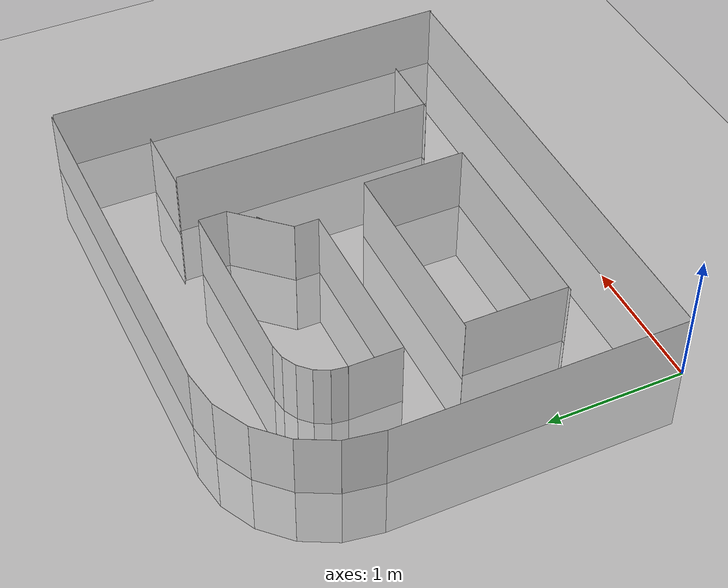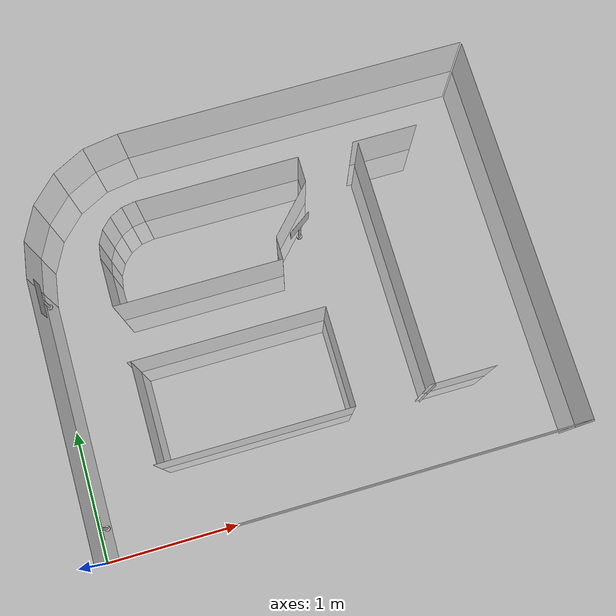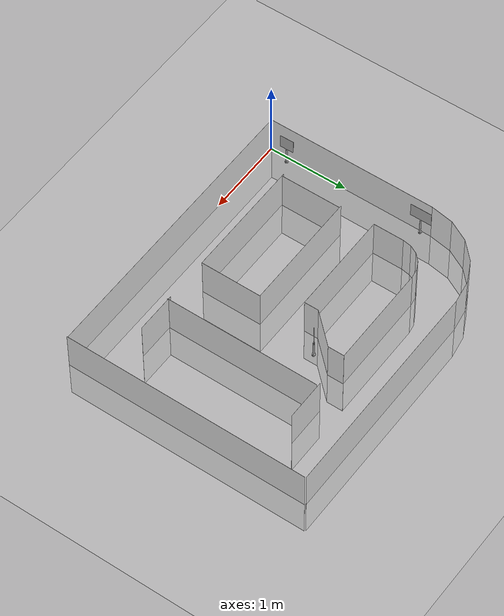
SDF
<sdf version="1.7">
 <world name="default">
  <light name="sun" type="directional">
   <pose>0 0 10 0 -0 0</pose>
   <diffuse>0.8 0.8 0.8 1</diffuse>
   <specular>0.1 0.1 0.1 1</specular>
   <attenuation>
    <range>1000</range>
    <constant>0.9</constant>
    <linear>0.01</linear>
    <quadratic>0.001</quadratic>
   </attenuation>
   <direction>-0.5 0.5 -1</direction>
   <spot><inner_angle>0</inner_angle><outer_angle>0</outer_angle><falloff>0</falloff></spot>
  </light>
  <model name="ground_plane">
   <static>1</static>
   <link name="link">
    <collision name="collision">
     <geometry><plane><normal>0 0 1</normal><size>100 100</size></plane></geometry>
     <surface><friction><ode><mu>100</mu><mu2>50</mu2></ode></friction></surface>
    </collision>
    <visual name="visual">
     <cast_shadows>0</cast_shadows>
     <geometry><plane><normal>0 0 1</normal><size>100 100</size></plane></geometry>
     <material>
      <script><uri>file://media/materials/scripts/gazebo.material</uri><name>Gazebo/Grey</name></script>
     </material>
    </visual>
   </link>
  </model>
  <model name="wall_0">
   <static>1</static>
   <link name="link">
    <collision name="collision"><geometry><box><size>2.1336 0.001 1</size></box></geometry></collision>
    <visual name="visual">
     <geometry><box><size>2.1336 0.001 1</size></box></geometry>
     <material>
      <script><name>Gazebo/White</name><uri>file://media/materials/scripts/gazebo.material</uri></script>
     </material>
    </visual>
   </link>
   <pose>0 1.0668 0 0 -0 1.5708</pose>
  </model>
  <model name="wall_1">
   <static>1</static>
   <link name="link">
    <collision name="collision"><geometry><box><size>0.286088 0.001 1</size></box></geometry></collision>
    <visual name="visual">
     <geometry><box><size>0.286088 0.001 1</size></box></geometry>
     <material>
      <script><name>Gazebo/White</name><uri>file://media/materials/scripts/gazebo.material</uri></script>
     </material>
    </visual>
   </link>
   <pose>0.022377 2.27489 0 0 -0 1.41372</pose>
  </model>
  <model name="wall_2">
   <static>1</static>
   <link name="link">
    <collision name="collision"><geometry><box><size>0.286088 0.001 1</size></box></geometry></collision>
    <visual name="visual">
     <geometry><box><size>0.286088 0.001 1</size></box></geometry>
     <material>
      <script><name>Gazebo/White</name><uri>file://media/materials/scripts/gazebo.material</uri></script>
     </material>
    </visual>
   </link>
   <pose>0.109695 2.54362 0 0 -0 1.09956</pose>
  </model>
  <model name="wall_3">
   <static>1</static>
   <link name="link">
    <collision name="collision"><geometry><box><size>0.286088 0.001 1</size></box></geometry></collision>
    <visual name="visual">
     <geometry><box><size>0.286088 0.001 1</size></box></geometry>
     <material>
      <script><name>Gazebo/White</name><uri>file://media/materials/scripts/gazebo.material</uri></script>
     </material>
    </visual>
   </link>
   <pose>0.275783 2.77222 0 0 -0 0.785398</pose>
  </model>
  <model name="wall_4">
   <static>1</static>
   <link name="link">
    <collision name="collision"><geometry><box><size>0.286088 0.001 1</size></box></geometry></collision>
    <visual name="visual">
     <geometry><box><size>0.286088 0.001 1</size></box></geometry>
     <material>
      <script><name>Gazebo/White</name><uri>file://media/materials/scripts/gazebo.material</uri></script>
     </material>
    </visual>
   </link>
   <pose>0.504383 2.93831 0 0 -0 0.471239</pose>
  </model>
  <model name="wall_5">
   <static>1</static>
   <link name="link">
    <collision name="collision"><geometry><box><size>0.286088 0.001 1</size></box></geometry></collision>
    <visual name="visual">
     <geometry><box><size>0.286088 0.001 1</size></box></geometry>
     <material>
      <script><name>Gazebo/White</name><uri>file://media/materials/scripts/gazebo.material</uri></script>
     </material>
    </visual>
   </link>
   <pose>0.773119 3.02563 0 0 -0 0.15708</pose>
  </model>
  <model name="wall_6">
   <static>1</static>
   <link name="link">
    <collision name="collision"><geometry><box><size>2.74321 0.001 1</size></box></geometry></collision>
    <visual name="visual">
     <geometry><box><size>2.74321 0.001 1</size></box></geometry>
     <material>
      <script><name>Gazebo/White</name><uri>file://media/materials/scripts/gazebo.material</uri></script>
     </material>
    </visual>
   </link>
   <pose>2.286 3.04801 0 0 -0 0</pose>
  </model>
  <model name="wall_7">
   <static>1</static>
   <link name="link">
    <collision name="collision"><geometry><box><size>3.04801 0.001 1</size></box></geometry></collision>
    <visual name="visual">
     <geometry><box><size>3.04801 0.001 1</size></box></geometry>
     <material>
      <script><name>Gazebo/White</name><uri>file://media/materials/scripts/gazebo.material</uri></script>
     </material>
    </visual>
   </link>
   <pose>3.66449 1.51101 0 0 0 -1.5708</pose>
  </model>
  <model name="wall_8">
   <static>1</static>
   <link name="link">
    <collision name="collision"><geometry><box><size>3.65761 0.001 1</size></box></geometry></collision>
    <visual name="visual">
     <geometry><box><size>3.65761 0.001 1</size></box></geometry>
     <material>
      <script><name>Gazebo/White</name><uri>file://media/materials/scripts/gazebo.material</uri></script>
     </material>
    </visual>
   </link>
   <pose>1.8288 0 0 0 0 -3.14159</pose>
  </model>
  <model name="wall_9">
   <static>1</static>
   <link name="link">
    <collision name="collision"><geometry><box><size>0.762002 0.001 1</size></box></geometry></collision>
    <visual name="visual">
     <geometry><box><size>0.762002 0.001 1</size></box></geometry>
     <material>
      <script><name>Gazebo/White</name><uri>file://media/materials/scripts/gazebo.material</uri></script>
     </material>
    </visual>
   </link>
   <pose>0.58664 0.939474 0 0 -0 1.5708</pose>
  </model>
  <model name="wall_10">
   <static>1</static>
   <link name="link">
    <collision name="collision"><geometry><box><size>1.4986 0.001 1</size></box></geometry></collision>
    <visual name="visual">
     <geometry><box><size>1.4986 0.001 1</size></box></geometry>
     <material>
      <script><name>Gazebo/White</name><uri>file://media/materials/scripts/gazebo.material</uri></script>
     </material>
    </visual>
   </link>
   <pose>1.3081 1.3208 0 0 -0 0</pose>
  </model>
  <model name="wall_11">
   <static>1</static>
   <link name="link">
    <collision name="collision"><geometry><box><size>0.762002 0.001 1</size></box></geometry></collision>
    <visual name="visual">
     <geometry><box><size>0.762002 0.001 1</size></box></geometry>
     <material>
      <script><name>Gazebo/White</name><uri>file://media/materials/scripts/gazebo.material</uri></script>
     </material>
    </visual>
   </link>
   <pose>2.0574 0.939802 0 0 0 -1.5708</pose>
  </model>
  <model name="wall_12">
   <static>1</static>
   <link name="link">
    <collision name="collision"><geometry><box><size>1.4986 0.001 1</size></box></geometry></collision>
    <visual name="visual">
     <geometry><box><size>1.4986 0.001 1</size></box></geometry>
     <material>
      <script><name>Gazebo/White</name><uri>file://media/materials/scripts/gazebo.material</uri></script>
     </material>
    </visual>
   </link>
   <pose>1.3081 0.558801 0 0 0 -3.14159</pose>
  </model>
  <model name="wall_13">
   <static>1</static>
   <link name="link">
    <collision name="collision"><geometry><box><size>0.381001 0.001 1</size></box></geometry></collision>
    <visual name="visual">
     <geometry><box><size>0.381001 0.001 1</size></box></geometry>
     <material>
      <script><name>Gazebo/White</name><uri>file://media/materials/scripts/gazebo.material</uri></script>
     </material>
    </visual>
   </link>
   <pose>0.558801 1.9431 0 0 -0 1.5708</pose>
  </model>
  <model name="wall_14">
   <static>1</static>
   <link name="link">
    <collision name="collision"><geometry><box><size>0.111256 0.001 1</size></box></geometry></collision>
    <visual name="visual">
     <geometry><box><size>0.111256 0.001 1</size></box></geometry>
     <material>
      <script><name>Gazebo/White</name><uri>file://media/materials/scripts/gazebo.material</uri></script>
     </material>
    </visual>
   </link>
   <pose>0.567503 2.18855 0 0 -0 1.41372</pose>
  </model>
  <model name="wall_15">
   <static>1</static>
   <link name="link">
    <collision name="collision"><geometry><box><size>0.111256 0.001 1</size></box></geometry></collision>
    <visual name="visual">
     <geometry><box><size>0.111256 0.001 1</size></box></geometry>
     <material>
      <script><name>Gazebo/White</name><uri>file://media/materials/scripts/gazebo.material</uri></script>
     </material>
    </visual>
   </link>
   <pose>0.60146 2.29306 0 0 -0 1.09956</pose>
  </model>
  <model name="wall_16">
   <static>1</static>
   <link name="link">
    <collision name="collision"><geometry><box><size>0.111256 0.001 1</size></box></geometry></collision>
    <visual name="visual">
     <geometry><box><size>0.111256 0.001 1</size></box></geometry>
     <material>
      <script><name>Gazebo/White</name><uri>file://media/materials/scripts/gazebo.material</uri></script>
     </material>
    </visual>
   </link>
   <pose>0.66605 2.38196 0 0 -0 0.785398</pose>
  </model>
  <model name="wall_17">
   <static>1</static>
   <link name="link">
    <collision name="collision"><geometry><box><size>0.111256 0.001 1</size></box></geometry></collision>
    <visual name="visual">
     <geometry><box><size>0.111256 0.001 1</size></box></geometry>
     <material>
      <script><name>Gazebo/White</name><uri>file://media/materials/scripts/gazebo.material</uri></script>
     </material>
    </visual>
   </link>
   <pose>0.75495 2.44655 0 0 -0 0.471239</pose>
  </model>
  <model name="wall_18">
   <static>1</static>
   <link name="link">
    <collision name="collision"><geometry><box><size>0.111256 0.001 1</size></box></geometry></collision>
    <visual name="visual">
     <geometry><box><size>0.111256 0.001 1</size></box></geometry>
     <material>
      <script><name>Gazebo/White</name><uri>file://media/materials/scripts/gazebo.material</uri></script>
     </material>
    </visual>
   </link>
   <pose>0.859458 2.4805 0 0 -0 0.15708</pose>
  </model>
  <model name="wall_19">
   <static>1</static>
   <link name="link">
    <collision name="collision"><geometry><box><size>1.27 0.001 1</size></box></geometry></collision>
    <visual name="visual">
     <geometry><box><size>1.27 0.001 1</size></box></geometry>
     <material>
      <script><name>Gazebo/White</name><uri>file://media/materials/scripts/gazebo.material</uri></script>
     </material>
    </visual>
   </link>
   <pose>1.5494 2.48921 0 0 -0 0</pose>
  </model>
  <model name="wall_20">
   <static>1</static>
   <link name="link">
    <collision name="collision"><geometry><box><size>0.2032 0.001 1</size></box></geometry></collision>
    <visual name="visual">
     <geometry><box><size>0.2032 0.001 1</size></box></geometry>
     <material>
      <script><name>Gazebo/White</name><uri>file://media/materials/scripts/gazebo.material</uri></script>
     </material>
    </visual>
   </link>
   <pose>2.1844 2.38761 0 0 0 -1.5708</pose>
  </model>
  <model name="wall_21">
   <static>1</static>
   <link name="link">
    <collision name="collision"><geometry><box><size>0.485267 0.001 1</size></box></geometry></collision>
    <visual name="visual">
     <geometry><box><size>0.485267 0.001 1</size></box></geometry>
     <material>
      <script><name>Gazebo/White</name><uri>file://media/materials/scripts/gazebo.material</uri></script>
     </material>
    </visual>
   </link>
   <pose>2.0193 2.1082 0 0 0 -2.31917</pose>
  </model>
  <model name="wall_22">
   <static>1</static>
   <link name="link">
    <collision name="collision"><geometry><box><size>0.1778 0.001 1</size></box></geometry></collision>
    <visual name="visual">
     <geometry><box><size>0.1778 0.001 1</size></box></geometry>
     <material>
      <script><name>Gazebo/White</name><uri>file://media/materials/scripts/gazebo.material</uri></script>
     </material>
    </visual>
   </link>
   <pose>1.8542 1.8415 0 0 0 -1.5708</pose>
  </model>
  <model name="wall_23">
   <static>1</static>
   <link name="link">
    <collision name="collision"><geometry><box><size>1.2954 0.001 1</size></box></geometry></collision>
    <visual name="visual">
     <geometry><box><size>1.2954 0.001 1</size></box></geometry>
     <material>
      <script><name>Gazebo/White</name><uri>file://media/materials/scripts/gazebo.material</uri></script>
     </material>
    </visual>
   </link>
   <pose>1.2065 1.7526 0 0 0 -3.14159</pose>
  </model>
  <model name="wall_24">
   <static>1</static>
   <link name="link">
    <collision name="collision"><geometry><box><size>0.508001 0.001 1</size></box></geometry></collision>
    <visual name="visual">
     <geometry><box><size>0.508001 0.001 1</size></box></geometry>
     <material>
      <script><name>Gazebo/White</name><uri>file://media/materials/scripts/gazebo.material</uri></script>
     </material>
    </visual>
   </link>
   <pose>2.87021 2.48921 0 0 -0 0</pose>
  </model>
  <model name="wall_25">
   <static>1</static>
   <link name="link">
    <collision name="collision"><geometry><box><size>0.508001 0.001 1</size></box></geometry></collision>
    <visual name="visual">
     <geometry><box><size>0.508001 0.001 1</size></box></geometry>
     <material>
      <script><name>Gazebo/White</name><uri>file://media/materials/scripts/gazebo.material</uri></script>
     </material>
    </visual>
   </link>
   <pose>2.87021 0.558801 0 0 0 -3.14159</pose>
  </model>
  <model name="wall_26">
   <static>1</static>
   <link name="link">
    <collision name="collision"><geometry><box><size>1.9304 0.001 1</size></box></geometry></collision>
    <visual name="visual">
     <geometry><box><size>1.9304 0.001 1</size></box></geometry>
     <material>
      <script><name>Gazebo/White</name><uri>file://media/materials/scripts/gazebo.material</uri></script>
     </material>
    </visual>
   </link>
   <pose>2.65368 1.50592 0 0 -0 1.5708</pose>
  </model>
  <gravity>0 0 -9.8</gravity>
  <magnetic_field>6e-06 2.3e-05 -4.2e-05</magnetic_field>
  <atmosphere type="adiabatic"/>
  <physics name="default_physics" default="0" type="ode">
   <max_step_size>0.001</max_step_size>
   <real_time_factor>1</real_time_factor>
   <real_time_update_rate>1000</real_time_update_rate>
  </physics>
  <scene><ambient>0.4 0.4 0.4 1</ambient><background>0.7 0.7 0.7 1</background><shadows>1</shadows></scene>
  <spherical_coordinates>
   <surface_model>EARTH_WGS84</surface_model>
   <latitude_deg>0</latitude_deg>
   <longitude_deg>0</longitude_deg>
   <elevation>0</elevation>
   <heading_deg>0</heading_deg>
  </spherical_coordinates>
  <model name="apple">
   <link name="plate">
    <pose>0 0 0.3 0 -0 0</pose>
    <collision name="collision">
     <geometry><box><size>0.001 0.18 0.18</size></box></geometry>
     <surface><friction><ode><mu>1</mu><mu2>1</mu2></ode></friction></surface>
    </collision>
    <visual name="visual">
     <geometry><box><size>0.001 0.18 0.18</size></box></geometry>
     <material>
      <script>
       <uri>model://apple/materials/scripts</uri>
       <uri>model://apple/materials/textures</uri>
       <name>apple/apple</name>
      </script>
     </material>
    </visual>
    <inertial>
     <inertia><ixx>0.1</ixx><ixy>0</ixy><ixz>0</ixz><iyy>0.1</iyy><iyz>0</iyz><izz>0.1</izz></inertia>
     <mass>0.1</mass>
    </inertial>
   </link>
   <link name="pole">
    <pose>0 0 0.11 0 -0 0</pose>
    <collision name="collision">
     <geometry><cylinder><radius>0.01</radius><length>0.2</length></cylinder></geometry>
     <surface>
      <friction><torsional><coefficient>1</coefficient></torsional><ode><mu>1</mu><mu2>1</mu2></ode></friction>
     </surface>
    </collision>
    <visual name="visual">
     <geometry><cylinder><radius>0.01</radius><length>0.2</length></cylinder></geometry>
    </visual>
    <inertial>
     <inertia><ixx>1</ixx><ixy>0</ixy><ixz>0</ixz><iyy>1</iyy><iyz>0</iyz><izz>1</izz></inertia>
     <mass>1</mass>
    </inertial>
   </link>
   <link name="base">
    <collision name="collision">
     <geometry><cylinder><radius>0.02</radius><length>0.02</length></cylinder></geometry>
     <surface><friction><ode><mu>0.01</mu><mu2>0.01</mu2></ode></friction></surface>
    </collision>
    <visual name="visual">
     <geometry><cylinder><radius>0.02</radius><length>0.02</length></cylinder></geometry>
    </visual>
    <inertial>
     <inertia><ixx>0.1</ixx><ixy>0</ixy><ixz>0</ixz><iyy>0.1</iyy><iyz>0</iyz><izz>0.1</izz></inertia>
     <mass>0.1</mass>
    </inertial>
    <gravity>0</gravity>
   </link>
   <joint name="base_pole" type="fixed">
    <parent>base</parent>
    <child>pole</child>
    <pose>0 0 0.02 0 -0 0</pose>
   </joint>
   <joint name="pole_plate" type="fixed">
    <parent>pole</parent>
    <child>plate</child>
    <pose>0 0 0.1 0 -0 0</pose>
   </joint>
   <pose>0.058967 0.24695 0.010016 -0.000265 0.000735 0.01237</pose>
  </model>
  <model name="pizza">
   <link name="plate">
    <pose>0 0 0.3 0 -0 0</pose>
    <collision name="collision">
     <geometry><box><size>0.001 0.27 0.18</size></box></geometry>
     <surface><friction><ode><mu>1</mu><mu2>1</mu2></ode></friction></surface>
    </collision>
    <visual name="visual">
     <geometry><box><size>0.001 0.27 0.18</size></box></geometry>
     <material>
      <script>
       <uri>model://pizza/materials/scripts</uri>
       <uri>model://pizza/materials/textures</uri>
       <name>pizza/pizza</name>
      </script>
     </material>
    </visual>
    <inertial>
     <inertia><ixx>0.1</ixx><ixy>0</ixy><ixz>0</ixz><iyy>0.1</iyy><iyz>0</iyz><izz>0.1</izz></inertia>
     <mass>0.1</mass>
    </inertial>
   </link>
   <link name="pole">
    <pose>0 0 0.11 0 -0 0</pose>
    <collision name="collision">
     <geometry><cylinder><radius>0.01</radius><length>0.2</length></cylinder></geometry>
     <surface>
      <friction><torsional><coefficient>1</coefficient></torsional><ode><mu>1</mu><mu2>1</mu2></ode></friction>
     </surface>
    </collision>
    <visual name="visual">
     <geometry><cylinder><radius>0.01</radius><length>0.2</length></cylinder></geometry>
    </visual>
    <inertial>
     <inertia><ixx>1</ixx><ixy>0</ixy><ixz>0</ixz><iyy>1</iyy><iyz>0</iyz><izz>1</izz></inertia>
     <mass>1</mass>
    </inertial>
   </link>
   <link name="base">
    <collision name="collision">
     <geometry><cylinder><radius>0.02</radius><length>0.02</length></cylinder></geometry>
     <surface><friction><ode><mu>0.01</mu><mu2>0.01</mu2></ode></friction></surface>
    </collision>
    <visual name="visual">
     <geometry><cylinder><radius>0.02</radius><length>0.02</length></cylinder></geometry>
    </visual>
    <inertial>
     <inertia><ixx>0.1</ixx><ixy>0</ixy><ixz>0</ixz><iyy>0.1</iyy><iyz>0</iyz><izz>0.1</izz></inertia>
     <mass>0.1</mass>
    </inertial>
    <gravity>0</gravity>
   </link>
   <joint name="base_pole" type="fixed">
    <parent>base</parent>
    <child>pole</child>
    <pose>0 0 0.02 0 -0 0</pose>
   </joint>
   <joint name="pole_plate" type="fixed">
    <parent>pole</parent>
    <child>plate</child>
    <pose>0 0 0.1 0 -0 0</pose>
   </joint>
   <pose>0.028562 2.01192 0.010006 -9.7e-05 -0.000558 0.002603</pose>
  </model>
  <model name="cake">
   <link name="plate">
    <pose>0 0 0.3 0 -0 0</pose>
    <collision name="collision">
     <geometry><box><size>0.001 0.218 0.18</size></box></geometry>
     <surface><friction><ode><mu>1</mu><mu2>1</mu2></ode></friction></surface>
    </collision>
    <visual name="visual">
     <geometry><box><size>0.001 0.218 0.18</size></box></geometry>
     <material>
      <script>
       <uri>model://cake/materials/scripts</uri>
       <uri>model://cake/materials/textures</uri>
       <name>cake/cake</name>
      </script>
     </material>
    </visual>
    <inertial>
     <inertia><ixx>0.1</ixx><ixy>0</ixy><ixz>0</ixz><iyy>0.1</iyy><iyz>0</iyz><izz>0.1</izz></inertia>
     <mass>0.1</mass>
    </inertial>
   </link>
   <link name="pole">
    <pose>0 0 0.11 0 -0 0</pose>
    <collision name="collision">
     <geometry><cylinder><radius>0.01</radius><length>0.2</length></cylinder></geometry>
     <surface>
      <friction><torsional><coefficient>1</coefficient></torsional><ode><mu>1</mu><mu2>1</mu2></ode></friction>
     </surface>
    </collision>
    <visual name="visual">
     <geometry><cylinder><radius>0.01</radius><length>0.2</length></cylinder></geometry>
    </visual>
    <inertial>
     <inertia><ixx>1</ixx><ixy>0</ixy><ixz>0</ixz><iyy>1</iyy><iyz>0</iyz><izz>1</izz></inertia>
     <mass>1</mass>
    </inertial>
   </link>
   <link name="base">
    <collision name="collision">
     <geometry><cylinder><radius>0.02</radius><length>0.02</length></cylinder></geometry>
     <surface><friction><ode><mu>0.01</mu><mu2>0.01</mu2></ode></friction></surface>
    </collision>
    <visual name="visual">
     <geometry><cylinder><radius>0.02</radius><length>0.02</length></cylinder></geometry>
    </visual>
    <inertial>
     <inertia><ixx>0.1</ixx><ixy>0</ixy><ixz>0</ixz><iyy>0.1</iyy><iyz>0</iyz><izz>0.1</izz></inertia>
     <mass>0.1</mass>
    </inertial>
    <gravity>0</gravity>
   </link>
   <joint name="base_pole" type="fixed">
    <parent>base</parent>
    <child>pole</child>
    <pose>0 0 0.02 0 -0 0</pose>
   </joint>
   <joint name="pole_plate" type="fixed">
    <parent>pole</parent>
    <child>plate</child>
    <pose>0 0 0.1 0 -0 0</pose>
   </joint>
   <pose>2.06027 2.02105 0.010009 -0.000467 -6.6e-05 2.17956</pose>
  </model>
 </world>
</sdf>
